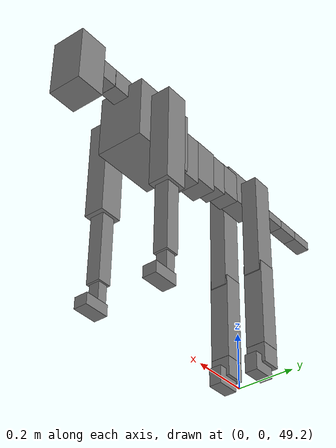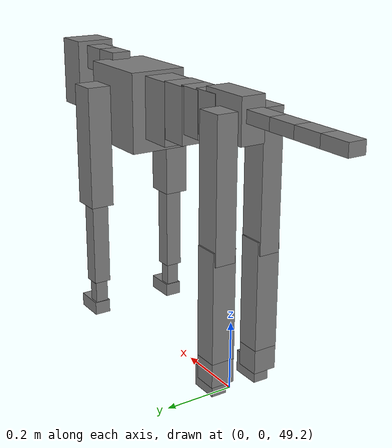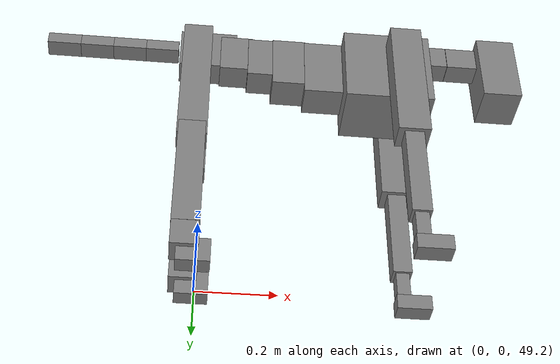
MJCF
<mujoco model="dog">

    <default>
        <joint armature="0.02" stiffness="1" damping="0.2" limited="true"/>
        <geom condim="3" friction="1 0.05 0.05" margin="0.01"/>
        <motor ctrllimited="true" ctrlrange="-1.0 1.0" forcelimited="true" gear="50"/>
    </default>

    <compiler inertiafromgeom="true" angle="radian"/>

    <option timestep="0.016" iterations="50" tolerance="1e-10" solver="Newton" jacobian="dense" cone="pyramidal"/>

    <size nconmax="20000" njmax="60000" nstack="5000000"/>
    <visual>
        <map force="0.1" zfar="30"/>
        <rgba haze="0.15 0.25 0.35 1"/>
        <quality shadowsize="2048"/>
        <global offwidth="800" offheight="800"/>
    </visual>

    <asset>
        <texture type="skybox" builtin="gradient" rgb1="0.3 0.5 0.7" rgb2="0 0 0" width="512" height="512"/>
        <texture name="texplane" type="2d" builtin="checker" rgb1=".2 .3 .4" rgb2=".1 0.15 0.2" width="512" height="512"
                 mark="cross" markrgb=".8 .8 .8"/>
        <texture name="texgeom" type="cube" builtin="flat" mark="cross" width="127" height="1278" rgb1="0.8 0.6 0.4"
                 rgb2="0.8 0.6 0.4" markrgb="1 1 1" random="0.01"/>

        <material name="matplane" reflectance="0.3" texture="texplane" texrepeat="1 1" texuniform="true"/>
        <material name="matgeom" texture="texgeom" texuniform="true" rgba="0.8 0.6 .4 1"/>
    </asset>

    <worldbody>
        <geom name="floor" pos="0 0 0" size="0 0 .25" type="plane" material="matplane" condim="3"/>

        <light directional="false" diffuse=".2 .2 .2" specular="0 0 0" pos="0 0 5" dir="0 0 -1" castshadow="false"/>
        <light mode="targetbodycom" target="torso" directional="false" diffuse=".8 .8 .8" specular="0.3 0.3 0.3"
               pos="0 0 4.0" dir="0 0 -1"/>

        <body name="root" pos="0 0 50">
            <freejoint name="root_1"/>
            <geom type="box" pos="0 0 -0.02" size="0.0774  0.0358  0.063" density="2030"/>

            <body name="spine1" pos="0.054 0 0">
                <joint name="spine1_y" axis="0 1 0" range="0 0.7" limited="true"/>
                <geom type="box" pos="0.02375 0 -0.03" size="0.04375  0.0375  0.05985" density="2030"/>

                <body name="spine2" pos="0.0612 0 0">
                    <joint name="spine2_y" axis="0 1 0" range="-0.15 0.15" limited="true"/>
                    <geom type="box" pos="0.03555  0  -0.04" size="0.04055  0.039  0.06615" density="2030"/>

                    <body name="spine3" pos="0.0730 0 0">
                        <joint name="spine3_y" axis="0 1 0" range="-0.15 0.15" limited="true"/>
                        <geom type="box" pos="0.03555  0  -0.057" size="0.04555  0.0445  0.081" density="2030"/>

                        <body name="spine4" pos="0.0780 0 0">
                            <joint name="spine4_y" axis="0 1 0" range="-0.15 0.15" limited="true"/>
                            <geom type="box" pos="0.05265  0  -0.07" size="0.05265  0.045  0.09135" density="2030"/>

                            <body name="torso" pos="0.1082 0 0">
                                <joint name="torso_y" axis="0 1 0" range="-0.15 0.15" limited="true"/>
                                <geom type="box" pos="0.11925  0  -0.085" size="0.11925  0.085  0.11745"
                                      density="2030"/>

                                <body name="neck1" pos="0.2160  0   0.0180">
                                    <joint name="neck1_y" axis="0 1 0" range="-1.2  -1" limited="true"/>
                                    <geom type="box" pos="0.0423  0  0" size="0.0423  0.03  0.036" density="2325"/>

                                    <body name="neck2" pos="0.0853  0  0">
                                        <joint name="neck2_y" axis="0 1 0" range="0.1  0" limited="true"/>
                                        <geom type="box" pos="0.0423  0  0" size="0.0423  0.03  0.036" density="2325"/>

                                        <body name="head" pos="0.0853  0  0">
                                            <joint name="head_y" axis="0 1 0" range="-0.3  -0.2" limited="true"/>
                                            <geom type="box" pos="0.0531  0  -0.055" size="0.0531  0.06  0.1044"
                                                  density="4030"/>

                                        </body>
                                    </body>
                                </body>

                                <body name="front_shoulder" pos="0.156  0   -0.0480">
                                    <joint name="front_shoulder_y" axis="0 1 0" range="-1 1.5" limited="true"/>
                                    <geom type="box" pos="0 0.13 -0.1557" size="0.0419  0.0358  0.1823" density="1158"/>
                                    <geom type="box" pos="0 -0.13 -0.1557" size="0.0419  0.0358  0.1823"
                                          density="1158"/>

                                    <body name="front_elbow" pos="0  0  -0.3114">
                                        <joint name="front_elbow_y" axis="0 1 0" range="-2 0" limited="true"/>
                                        <geom type="box" pos="0 0.13 -0.1390" size="0.0249  0.0255  0.1390"
                                              density="1081"/>
                                        <geom type="box" pos="0 -0.13 -0.1390" size="0.0249  0.0255  0.1390"
                                              density="1081"/>

                                        <body name="front_wrist" pos="0  0  -0.2780">
                                            <joint name="front_wrist_y" axis="0 1 0" range="-0.2 0" limited="true"/>
                                            <geom type="box" pos="0 0.13 -0.0416" size="0.0175  0.0194  0.0547"
                                                  density="1664"/>
                                            <geom type="box" pos="0 -0.13 -0.0416" size="0.0175  0.0194  0.0547"
                                                  density="1664"/>

                                            <body name="front_finger_end" pos="0  0  -0.0832">
                                                <joint name="front_finger_y" axis="0 1 0" range="-0.4 1"
                                                       limited="true"/>
                                                <geom type="box" pos="0.0244  0.13  -0.0052"
                                                      size="0.0447  0.0244  0.0202" density="1515"/>
                                                <geom type="box" pos="0.0244  -0.13  -0.0052"
                                                      size="0.0447  0.0244  0.0202" density="1515"/>

                                            </body>

                                        </body>
                                    </body>
                                </body>

                            </body>
                        </body>
                    </body>
                </body>
            </body>

            <body name="back_hip" pos="-0.03 0 -0.018">
                <joint name="back_hip_y" axis="0 1 0" range="-1.5 0.3" limited="true"/>
                <geom type="box" pos="0 0.07 -0.1746" size="0.0389  0.0305  0.1974" density="1154"/>
                <geom type="box" pos="0 -0.07 -0.1746" size="0.0389  0.0305  0.1974" density="1154"/>

                <body name="back_knee" pos="0  0  -0.3491">
                    <joint name="back_knee_y" axis="0 1 0" range="0 2.8" limited="true"/>
                    <geom type="box" pos="0 0.07 -0.1427" size="0.0350  0.0345  0.1582" density="1227"/>
                    <geom type="box" pos="0 -0.07 -0.1427" size="0.0350  0.0345  0.1582" density="1227"/>

                    <body name="back_ankle" pos="0  0  -0.2853">
                        <joint name="back_ankle_y" axis="0 1 0" range="-2.2 0" limited="true"/>
                        <geom type="box" pos="0 0.07 -0.0368" size="0.0343  0.0343  0.0481" density="1284"/>
                        <geom type="box" pos="0 -0.07 -0.0368" size="0.0343  0.0343  0.0481" density="1284"/>

                        <body name="back_toe_end" pos="0  0  -0.0737">
                            <joint name="back_toe_y" axis="0 1 0" range="-0.4 1" limited="true"/>
                            <geom type="box" pos="0.0224  0.07  -0.0171" size="0.0411  0.0224  0.0321" density="1515"/>
                            <geom type="box" pos="0.0224  -0.07  -0.0171" size="0.0411  0.0224  0.0321" density="1515"/>

                        </body>
                    </body>
                </body>
            </body>

            <body name="tail1" pos="-0.074 0 -0.006">
                <joint name="tail1_y" axis="0 1 0" range="-0.2 0.2" limited="true"/>
                <geom type="box" pos="-0.0536  0  0" size="0.045  0.025  0.0175" density="1587"/>

                <body name="tail2" pos="-0.09 0 0">
                    <joint name="tail2_y" axis="0 1 0" range="-0.2 0.2" limited="true"/>
                    <geom type="box" pos="-0.0536  0  0" size="0.045  0.025  0.0175" density="1587"/>

                    <body name="tail3" pos="-0.09 0 0">
                        <joint name="tail3_y" axis="0 1 0" range="-0.2 0.2" limited="true"/>
                        <geom type="box" pos="-0.0536  0  0" size="0.045  0.025  0.0175" density="1587"/>

                        <body name="tail4" pos="-0.09 0 0">
                            <joint name="tail4_y" axis="0 1 0" range="-0.2 0.2" limited="true"/>
                            <geom type="box" pos="-0.0536  0  0" size="0.045  0.025  0.0175" density="1587"/>

                        </body>
                    </body>
                </body>
            </body>
        </body>
    </worldbody>

    <actuator>
        <motor joint="spine1_y" forcerange="-150 150     "/>
        <motor joint="spine2_y" forcerange="-150 150     "/>
        <motor joint="spine3_y" forcerange="-150 150     "/>
        <motor joint="spine4_y" forcerange="-150 150     "/>
        <motor joint="torso_y" forcerange="-150 150     "/>
        <motor joint="neck1_y" forcerange="-100 100       "/>
        <motor joint="neck2_y" forcerange="-100 100       "/>
        <motor joint="head_y" forcerange="-150 150       "/>
        <motor joint="front_shoulder_y" forcerange="-143.86 194.88"/>
        <motor joint="front_elbow_y" forcerange="-101.97 183.25"/>
        <motor joint="front_wrist_y" forcerange="-62.89 92.40"/>
        <motor joint="front_finger_y" forcerange="-38.14 51.91"/>
        <motor joint="back_hip_y" forcerange="-286.20 320.96"/>
        <motor joint="back_knee_y" forcerange="-368.14 334.32"/>
        <motor joint="back_angle_y" forcerange="-208.88 239.70"/>
        <motor joint="back_toe_y" forcerange="-67.24 32.24"/>
        <motor joint="tail1_y" forcerange="-50 50     "/>
        <motor joint="tail2_y" forcerange="-50 50     "/>
        <motor joint="tail3_y" forcerange="-50 50     "/>
        <motor joint="tail4_y" forcerange="-50 50     "/>
    </actuator>
</mujoco>
